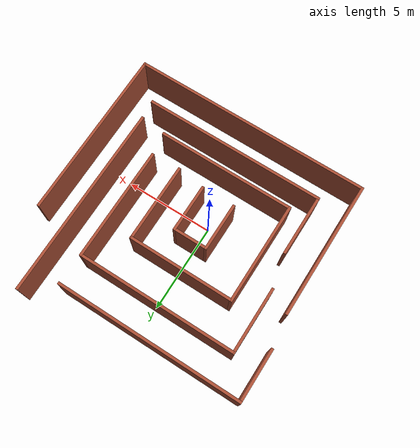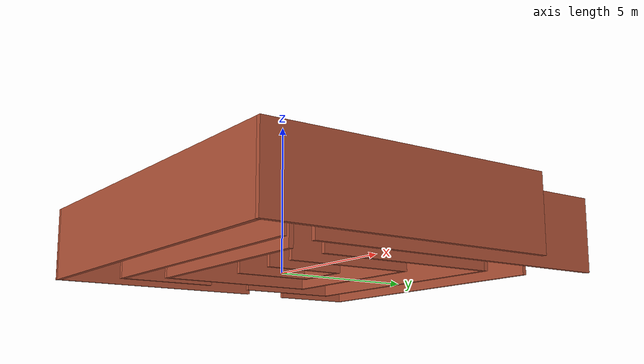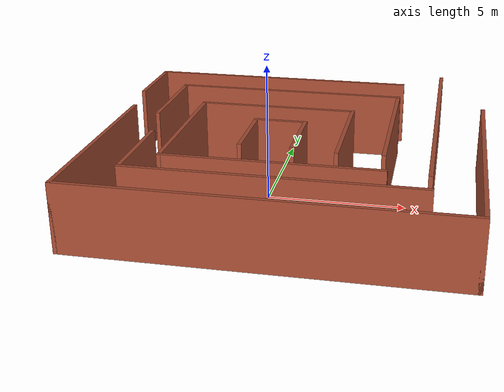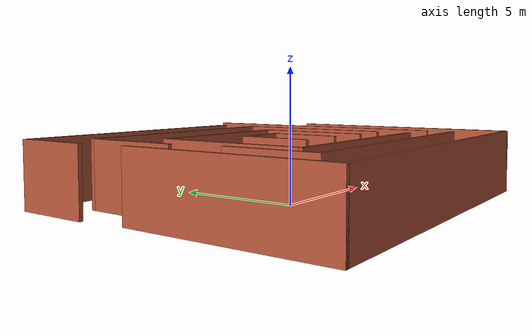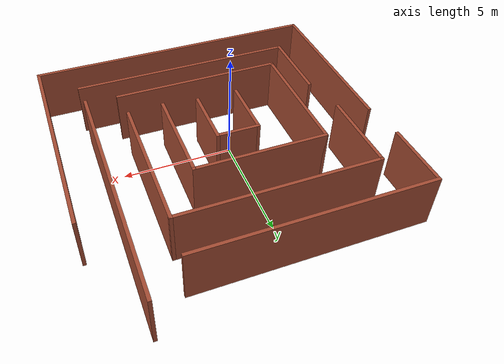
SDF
<?xml version='1.0'?>
<sdf version='1.6'>
  <model name='maze_jackal'>
    <pose frame=''>0.766151 1.30846 0 0 -0 0</pose>
    <link name='Wall_11'>
      <collision name='Wall_11_Collision'>
        <geometry>
          <box>
            <size>6.5 0.15 2.5</size>
          </box>
        </geometry>
        <pose frame=''>0 0 1.25 0 -0 0</pose>
      </collision>
      <visual name='Wall_11_Visual'>
        <pose frame=''>0 0 1.25 0 -0 0</pose>
        <geometry>
          <box>
            <size>6.5 0.15 2.5</size>
          </box>
        </geometry>
        <material>
          <script>
            <uri>file://media/materials/scripts/gazebo.material</uri>
            <name>Gazebo/Bricks</name>
          </script>
          <ambient>1 1 1 1</ambient>
        </material>
      </visual>
      <pose frame=''>3.49516 0.589175 0 0 -0 1.5708</pose>
    </link>
    <link name='Wall_12'>
      <collision name='Wall_12_Collision'>
        <geometry>
          <box>
            <size>9 0.15 2.5</size>
          </box>
        </geometry>
        <pose frame=''>0 0 1.25 0 -0 0</pose>
      </collision>
      <visual name='Wall_12_Visual'>
        <pose frame=''>0 0 1.25 0 -0 0</pose>
        <geometry>
          <box>
            <size>9 0.15 2.5</size>
          </box>
        </geometry>
        <material>
          <script>
            <uri>file://media/materials/scripts/gazebo.material</uri>
            <name>Gazebo/Bricks</name>
          </script>
          <ambient>1 1 1 1</ambient>
        </material>
      </visual>
      <pose frame=''>-0.929843 3.76417 0 0 -0 3.14159</pose>
    </link>
    <link name='Wall_13'>
      <collision name='Wall_13_Collision'>
        <geometry>
          <box>
            <size>3.75 0.15 2.5</size>
          </box>
        </geometry>
        <pose frame=''>0 0 1.25 0 -0 0</pose>
      </collision>
      <visual name='Wall_13_Visual'>
        <pose frame=''>0 0 1.25 0 -0 0</pose>
        <geometry>
          <box>
            <size>3.75 0.15 2.5</size>
          </box>
        </geometry>
        <material>
          <script>
            <uri>file://media/materials/scripts/gazebo.material</uri>
            <name>Gazebo/Bricks</name>
          </script>
          <ambient>1 1 1 1</ambient>
        </material>
      </visual>
      <pose frame=''>-5.35484 1.96418 0 0 0 -1.5708</pose>
    </link>
    <link name='Wall_15'>
      <collision name='Wall_15_Collision'>
        <geometry>
          <box>
            <size>3.5 0.15 2.5</size>
          </box>
        </geometry>
        <pose frame=''>0 0 1.25 0 -0 0</pose>
      </collision>
      <visual name='Wall_15_Visual'>
        <pose frame=''>0 0 1.25 0 -0 0</pose>
        <geometry>
          <box>
            <size>3.5 0.15 2.5</size>
          </box>
        </geometry>
        <material>
          <script>
            <uri>file://media/materials/scripts/gazebo.material</uri>
            <name>Gazebo/Bricks</name>
          </script>
          <ambient>1 1 1 1</ambient>
        </material>
      </visual>
      <pose frame=''>-4.9196 -3.45171 0 0 0 -1.5708</pose>
    </link>
    <link name='Wall_16'>
      <collision name='Wall_16_Collision'>
        <geometry>
          <box>
            <size>10.25 0.15 2.5</size>
          </box>
        </geometry>
        <pose frame=''>0 0 1.25 0 -0 0</pose>
      </collision>
      <visual name='Wall_16_Visual'>
        <pose frame=''>0 0 1.25 0 -0 0</pose>
        <geometry>
          <box>
            <size>10.25 0.15 2.5</size>
          </box>
        </geometry>
        <material>
          <script>
            <uri>file://media/materials/scripts/gazebo.material</uri>
            <name>Gazebo/Bricks</name>
          </script>
          <ambient>1 1 1 1</ambient>
        </material>
      </visual>
      <pose frame=''>0.130397 -5.12671 0 0 -0 0</pose>
    </link>
    <link name='Wall_18'>
      <collision name='Wall_18_Collision'>
        <geometry>
          <box>
            <size>11 0.15 2.5</size>
          </box>
        </geometry>
        <pose frame=''>0 0 1.25 0 -0 0</pose>
      </collision>
      <visual name='Wall_18_Visual'>
        <pose frame=''>0 0 1.25 0 -0 0</pose>
        <geometry>
          <box>
            <size>11 0.15 2.5</size>
          </box>
        </geometry>
        <material>
          <script>
            <uri>file://media/materials/scripts/gazebo.material</uri>
            <name>Gazebo/Bricks</name>
          </script>
          <ambient>1 1 1 1</ambient>
        </material>
      </visual>
      <pose frame=''>5.11338 1.38277 0 0 -0 1.5708</pose>
    </link>
    <link name='Wall_2'>
      <collision name='Wall_2_Collision'>
        <geometry>
          <box>
            <size>2.75 0.15 2.5</size>
          </box>
        </geometry>
        <pose frame=''>0 0 1.25 0 -0 0</pose>
      </collision>
      <visual name='Wall_2_Visual'>
        <pose frame=''>0 0 1.25 0 -0 0</pose>
        <geometry>
          <box>
            <size>2.75 0.15 2.5</size>
          </box>
        </geometry>
        <material>
          <script>
            <uri>file://media/materials/scripts/gazebo.material</uri>
            <name>Gazebo/Bricks</name>
          </script>
          <ambient>1 1 1 1</ambient>
        </material>
      </visual>
      <pose frame=''>-1.51615 -1.14846 0 0 -0 1.5708</pose>
    </link>
    <link name='Wall_20'>
      <collision name='Wall_20_Collision'>
        <geometry>
          <box>
            <size>7.75 0.15 2.5</size>
          </box>
        </geometry>
        <pose frame=''>0 0 1.25 0 -0 0</pose>
      </collision>
      <visual name='Wall_20_Visual'>
        <pose frame=''>0 0 1.25 0 -0 0</pose>
        <geometry>
          <box>
            <size>7.75 0.15 2.5</size>
          </box>
        </geometry>
        <material>
          <script>
            <uri>file://media/materials/scripts/gazebo.material</uri>
            <name>Gazebo/Bricks</name>
          </script>
          <ambient>1 1 1 1</ambient>
        </material>
      </visual>
      <pose frame=''>-6.54124 -3.00777 0 0 0 -1.5708</pose>
    </link>
    <link name='Wall_21'>
      <collision name='Wall_21_Collision'>
        <geometry>
          <box>
            <size>13.5 0.15 2.5</size>
          </box>
        </geometry>
        <pose frame=''>0 0 1.25 0 -0 0</pose>
      </collision>
      <visual name='Wall_21_Visual'>
        <pose frame=''>0 0 1.25 0 -0 0</pose>
        <geometry>
          <box>
            <size>13.5 0.15 2.5</size>
          </box>
        </geometry>
        <material>
          <script>
            <uri>file://media/materials/scripts/gazebo.material</uri>
            <name>Gazebo/Bricks</name>
          </script>
          <ambient>1 1 1 1</ambient>
        </material>
      </visual>
      <pose frame=''>0.133756 -6.80777 0 0 -0 0</pose>
    </link>
    <link name='Wall_22'>
      <collision name='Wall_22_Collision'>
        <geometry>
          <box>
            <size>9.75 0.15 2.5</size>
          </box>
        </geometry>
        <pose frame=''>0 0 1.25 0 -0 0</pose>
      </collision>
      <visual name='Wall_22_Visual'>
        <pose frame=''>0 0 1.25 0 -0 0</pose>
        <geometry>
          <box>
            <size>9.75 0.15 2.5</size>
          </box>
        </geometry>
        <material>
          <script>
            <uri>file://media/materials/scripts/gazebo.material</uri>
            <name>Gazebo/Bricks</name>
          </script>
          <ambient>1 1 1 1</ambient>
        </material>
      </visual>
      <pose frame=''>6.80876 -2.00777 0 0 -0 1.5708</pose>
    </link>
    <link name='Wall_24'>
      <collision name='Wall_24_Collision'>
        <geometry>
          <box>
            <size>3 0.15 2.5</size>
          </box>
        </geometry>
        <pose frame=''>0 0 1.25 0 -0 0</pose>
      </collision>
      <visual name='Wall_24_Visual'>
        <pose frame=''>0 0 1.25 0 -0 0</pose>
        <geometry>
          <box>
            <size>3 0.15 2.5</size>
          </box>
        </geometry>
        <material>
          <script>
            <uri>file://media/materials/scripts/gazebo.material</uri>
            <name>Gazebo/Bricks</name>
          </script>
          <ambient>1 1 1 1</ambient>
        </material>
      </visual>
      <pose frame=''>-6.80876 4.08981 0 0 -0 1.5708</pose>
    </link>
    <link name='Wall_25'>
      <collision name='Wall_25_Collision'>
        <geometry>
          <box>
            <size>10.5 0.15 2.5</size>
          </box>
        </geometry>
        <pose frame=''>0 0 1.25 0 -0 0</pose>
      </collision>
      <visual name='Wall_25_Visual'>
        <pose frame=''>0 0 1.25 0 -0 0</pose>
        <geometry>
          <box>
            <size>10.5 0.15 2.5</size>
          </box>
        </geometry>
        <material>
          <script>
            <uri>file://media/materials/scripts/gazebo.material</uri>
            <name>Gazebo/Bricks</name>
          </script>
          <ambient>1 1 1 1</ambient>
        </material>
      </visual>
      <pose frame=''>-1.63376 5.51481 0 0 -0 0</pose>
    </link>
    <link name='Wall_3'>
      <collision name='Wall_3_Collision'>
        <geometry>
          <box>
            <size>2 0.15 2.5</size>
          </box>
        </geometry>
        <pose frame=''>0 0 1.25 0 -0 0</pose>
      </collision>
      <visual name='Wall_3_Visual'>
        <pose frame=''>0 0 1.25 0 -0 0</pose>
        <geometry>
          <box>
            <size>2 0.15 2.5</size>
          </box>
        </geometry>
        <material>
          <script>
            <uri>file://media/materials/scripts/gazebo.material</uri>
            <name>Gazebo/Bricks</name>
          </script>
          <ambient>1 1 1 1</ambient>
        </material>
      </visual>
      <pose frame=''>-0.591151 0.151537 0 0 -0 0</pose>
    </link>
    <link name='Wall_4'>
      <collision name='Wall_4_Collision'>
        <geometry>
          <box>
            <size>2.75 0.15 2.5</size>
          </box>
        </geometry>
        <pose frame=''>0 0 1.25 0 -0 0</pose>
      </collision>
      <visual name='Wall_4_Visual'>
        <pose frame=''>0 0 1.25 0 -0 0</pose>
        <geometry>
          <box>
            <size>2.75 0.15 2.5</size>
          </box>
        </geometry>
        <material>
          <script>
            <uri>file://media/materials/scripts/gazebo.material</uri>
            <name>Gazebo/Bricks</name>
          </script>
          <ambient>1 1 1 1</ambient>
        </material>
      </visual>
      <pose frame=''>0.333849 -1.14846 0 0 0 -1.5708</pose>
    </link>
    <link name='Wall_6'>
      <collision name='Wall_6_Collision'>
        <geometry>
          <box>
            <size>7.75 0.15 2.5</size>
          </box>
        </geometry>
        <pose frame=''>0 0 1.25 0 -0 0</pose>
      </collision>
      <visual name='Wall_6_Visual'>
        <pose frame=''>0 0 1.25 0 -0 0</pose>
        <geometry>
          <box>
            <size>7.75 0.15 2.5</size>
          </box>
        </geometry>
        <material>
          <script>
            <uri>file://media/materials/scripts/gazebo.material</uri>
            <name>Gazebo/Bricks</name>
          </script>
          <ambient>1 1 1 1</ambient>
        </material>
      </visual>
      <pose frame=''>-0.147169 -3.90522 0 0 -0 3.14159</pose>
    </link>
    <link name='Wall_7'>
      <collision name='Wall_7_Collision'>
        <geometry>
          <box>
            <size>5.75 0.15 2.5</size>
          </box>
        </geometry>
        <pose frame=''>0 0 1.25 0 -0 0</pose>
      </collision>
      <visual name='Wall_7_Visual'>
        <pose frame=''>0 0 1.25 0 -0 0</pose>
        <geometry>
          <box>
            <size>5.75 0.15 2.5</size>
          </box>
        </geometry>
        <material>
          <script>
            <uri>file://media/materials/scripts/gazebo.material</uri>
            <name>Gazebo/Bricks</name>
          </script>
          <ambient>1 1 1 1</ambient>
        </material>
      </visual>
      <pose frame=''>-3.94717 -1.10522 0 0 -0 1.5708</pose>
    </link>
    <link name='Wall_8'>
      <collision name='Wall_8_Collision'>
        <geometry>
          <box>
            <size>6 0.15 2.5</size>
          </box>
        </geometry>
        <pose frame=''>0 0 1.25 0 -0 0</pose>
      </collision>
      <visual name='Wall_8_Visual'>
        <pose frame=''>0 0 1.25 0 -0 0</pose>
        <geometry>
          <box>
            <size>6 0.15 2.5</size>
          </box>
        </geometry>
        <material>
          <script>
            <uri>file://media/materials/scripts/gazebo.material</uri>
            <name>Gazebo/Bricks</name>
          </script>
          <ambient>1 1 1 1</ambient>
        </material>
      </visual>
      <pose frame=''>-1.02217 1.69478 0 0 -0 0</pose>
    </link>
    <link name='Wall_9'>
      <collision name='Wall_9_Collision'>
        <geometry>
          <box>
            <size>4.5 0.15 2.5</size>
          </box>
        </geometry>
        <pose frame=''>0 0 1.25 0 -0 0</pose>
      </collision>
      <visual name='Wall_9_Visual'>
        <pose frame=''>0 0 1.25 0 -0 0</pose>
        <geometry>
          <box>
            <size>4.5 0.15 2.5</size>
          </box>
        </geometry>
        <material>
          <script>
            <uri>file://media/materials/scripts/gazebo.material</uri>
            <name>Gazebo/Bricks</name>
          </script>
          <ambient>1 1 1 1</ambient>
        </material>
      </visual>
      <pose frame=''>1.90283 -0.480222 0 0 0 -1.5708</pose>
    </link>
    <static>1</static>
  </model>
</sdf>
